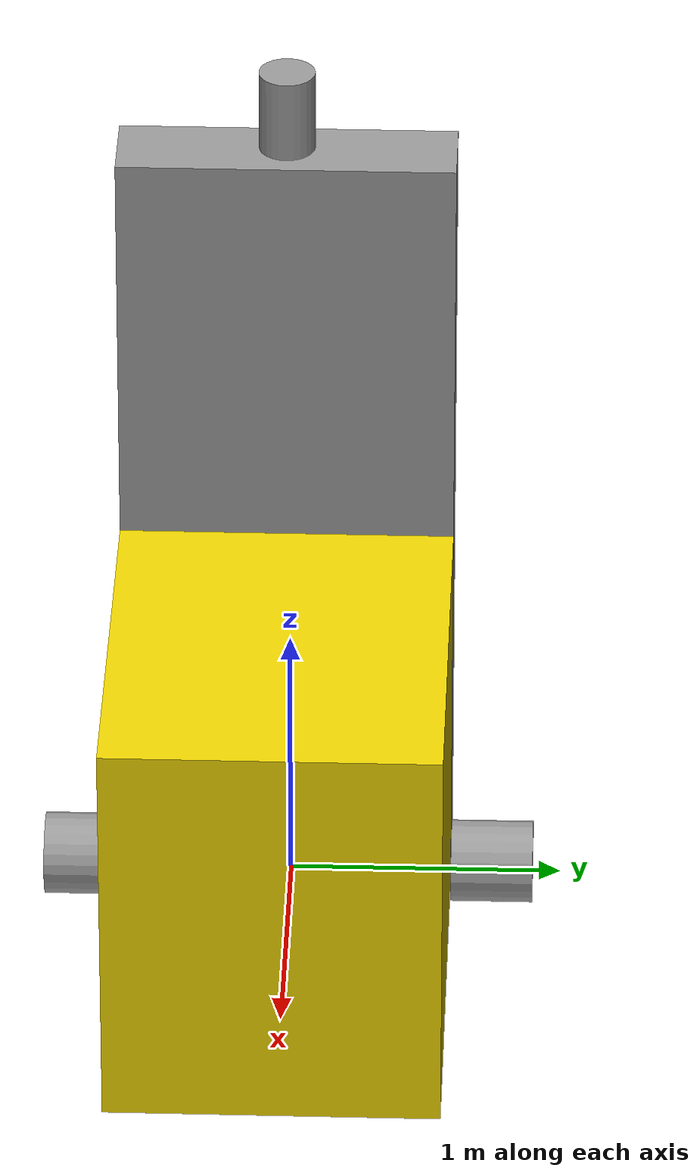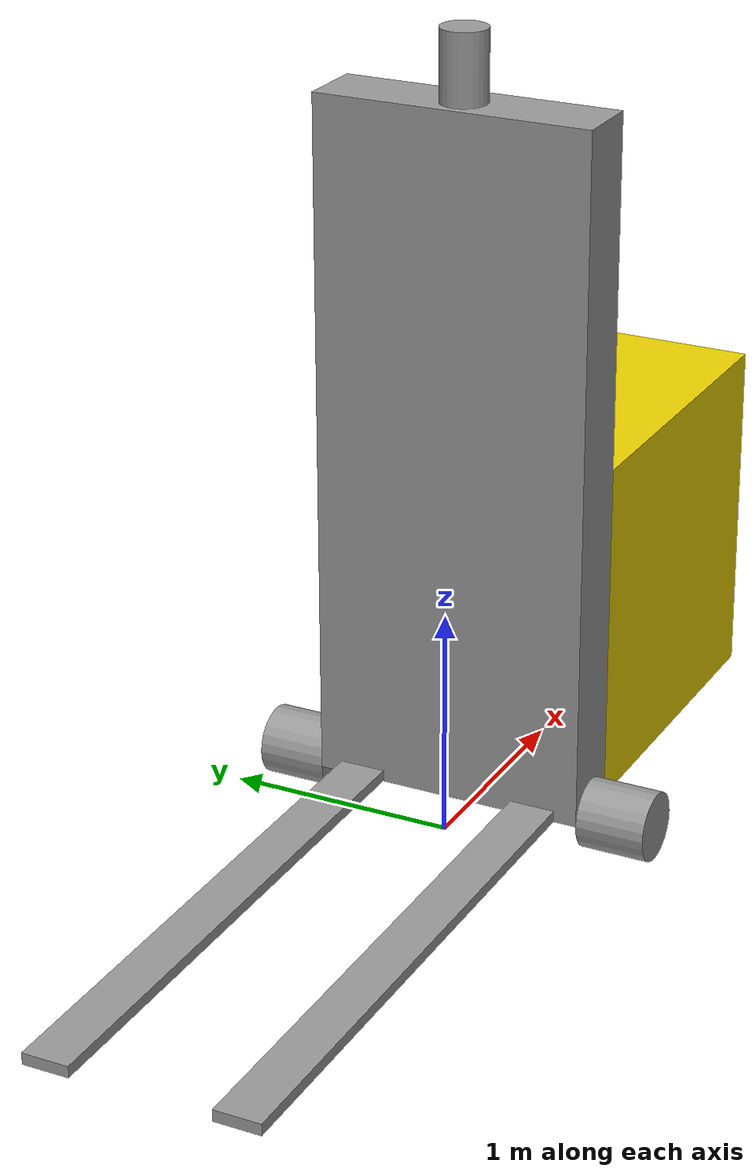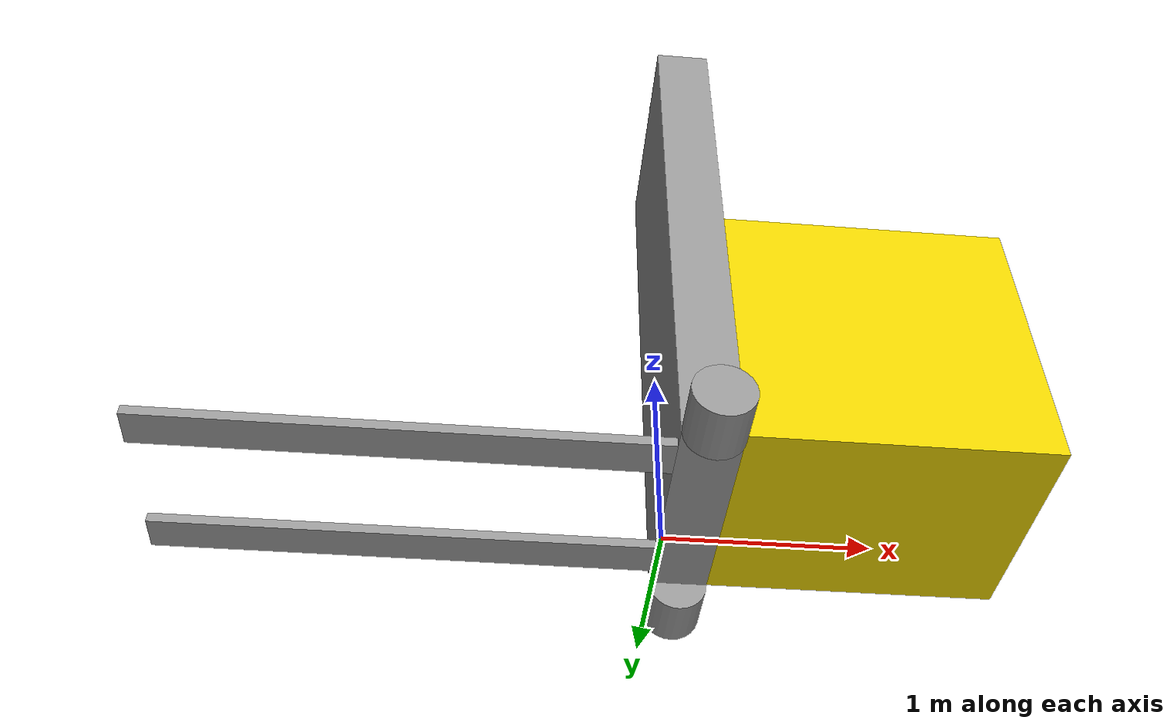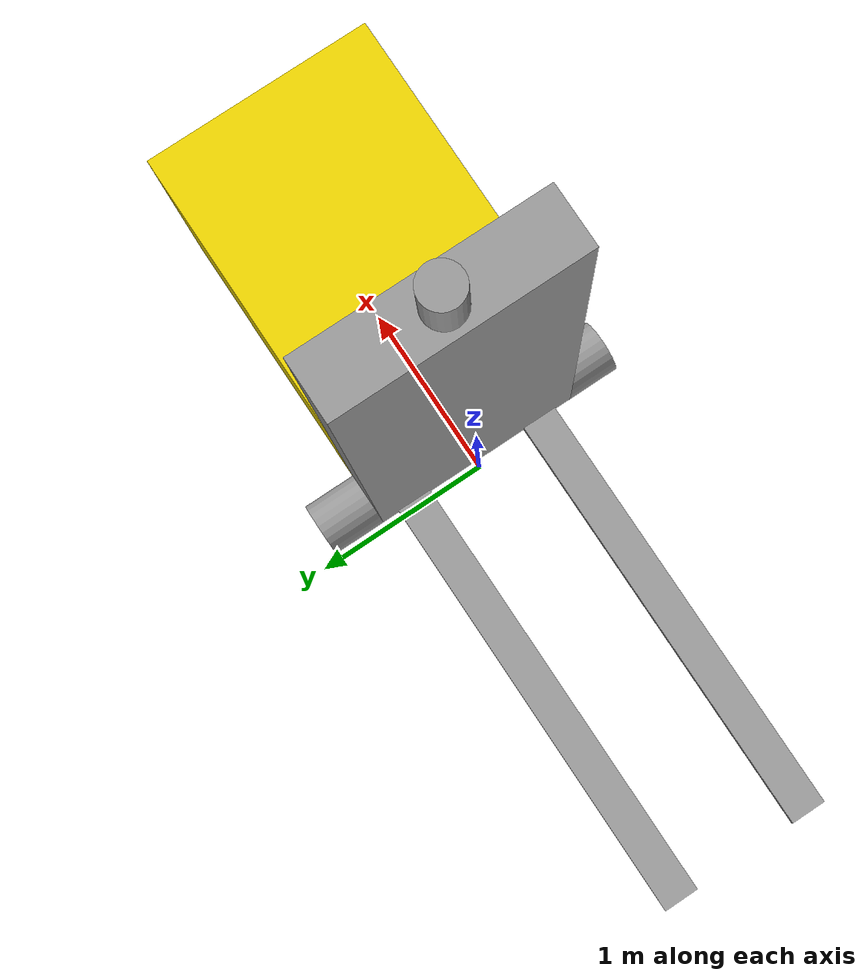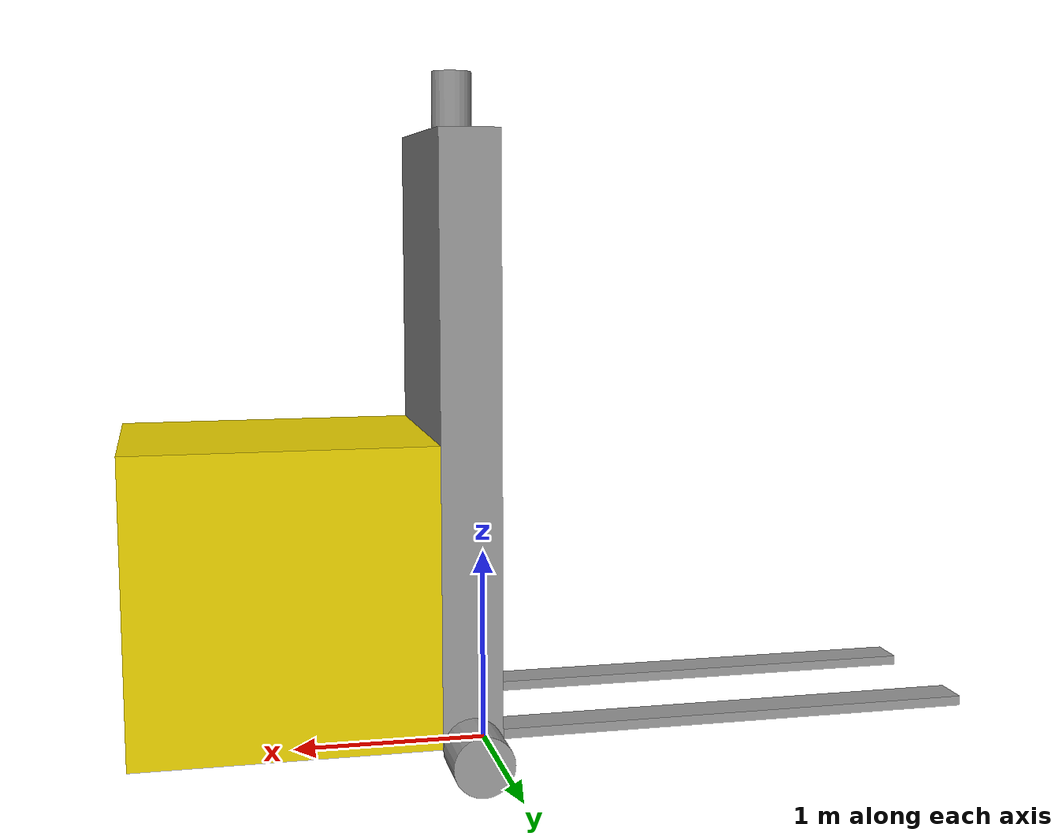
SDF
<?xml version='1.0'?>
<sdf version='1.7'>
  <model name='AGV_3Dlidar'>

    <link name='base'>
      <inertial>
        <mass>100</mass>
        <inertia>
          <ixx>60</ixx>
          <ixy>0</ixy>
          <ixz>0</ixz>
          <iyy>60</iyy>
          <iyz>0</iyz>
          <izz>60</izz>
        </inertia>
        <pose>1 0 0 0 -0 0</pose>
      </inertial>
      <pose>0.166667 0 0.15 0 -0 0</pose>
      <gravity>1</gravity>
      <self_collide>0</self_collide>
      <kinematic>0</kinematic>
      <enable_wind>0</enable_wind>
      <visual name='visual_1'>
        <pose>0.9 0 0.75 0 -0 0</pose>
        <geometry>
          <box>
            <size>1.5 1.2 1.5</size>
          </box>
        </geometry>
        <material>
          <lighting>1</lighting>
          <script>
            <uri>file://media/materials/scripts/gazebo.material</uri>
            <name>Gazebo/Grey</name>
          </script>
          <shader type='pixel'>
            <normal_map>__default__</normal_map>
          </shader>
          <ambient>0.929 0.831 0 1</ambient>
          <diffuse>0.7 0.7 0.7 1</diffuse>
          <specular>0.01 0.01 0.01 1</specular>
          <emissive>0 0 0 1</emissive>
        </material>
        <transparency>0</transparency>
        <cast_shadows>1</cast_shadows>
      </visual>
      <visual name='visual_3'>
        <pose>-1.4 -0.4 0.025 0 -0 0</pose>
        <geometry>
          <box>
            <size>2.5 0.2 0.05</size>
          </box>
        </geometry>
        <material>
          <lighting>1</lighting>
          <script>
            <uri>file://media/materials/scripts/gazebo.material</uri>
            <name>Gazebo/Grey</name>
          </script>
          <shader type='pixel'>
            <normal_map>__default__</normal_map>
          </shader>
          <ambient>0.3 0.3 0.3 1</ambient>
          <diffuse>0.7 0.7 0.7 1</diffuse>
          <specular>0.01 0.01 0.01 1</specular>
          <emissive>0 0 0 1</emissive>
        </material>
        <transparency>0</transparency>
        <cast_shadows>1</cast_shadows>
      </visual>
      <visual name='visual_2'>
        <pose>-1.4 0.4 0.025 0 -0 0</pose>
        <geometry>
          <box>
            <size>2.5 0.2 0.05</size>
          </box>
        </geometry>
        <material>
          <lighting>1</lighting>
          <script>
            <uri>file://media/materials/scripts/gazebo.material</uri>
            <name>Gazebo/Grey</name>
          </script>
          <shader type='pixel'>
            <normal_map>__default__</normal_map>
          </shader>
          <ambient>0.3 0.3 0.3 1</ambient>
          <diffuse>0.7 0.7 0.7 1</diffuse>
          <specular>0.01 0.01 0.01 1</specular>
          <emissive>0 0 0 1</emissive>
        </material>
        <transparency>0</transparency>
        <cast_shadows>1</cast_shadows>
      </visual>
      <visual name='visual'>
        <pose>0 0 1.5 0 -0 0</pose>
        <geometry>
          <box>
            <size>0.3 1.2 3</size>
          </box>
        </geometry>
        <material>
          <lighting>1</lighting>
          <script>
            <uri>file://media/materials/scripts/gazebo.material</uri>
            <name>Gazebo/Grey</name>
          </script>
          <shader type='pixel'>
            <normal_map>__default__</normal_map>
          </shader>
          <ambient>0.3 0.3 0.3 1</ambient>
          <diffuse>0.7 0.7 0.7 1</diffuse>
          <specular>0.01 0.01 0.01 1</specular>
          <emissive>0 0 0 1</emissive>
        </material>
        <transparency>0</transparency>
        <cast_shadows>1</cast_shadows>
      </visual>
      <collision name='collision'>
        <laser_retro>0</laser_retro>
        <max_contacts>10</max_contacts>
        <pose>0 0 1.5 0 -0 0</pose>
        <geometry>
          <box>
            <size>0.3 1.2 3</size>
          </box>
        </geometry>
        <surface>
          <friction>
            <ode>
              <mu>1</mu>
              <mu2>1</mu2>
              <fdir1>0 0 0</fdir1>
              <slip1>0</slip1>
              <slip2>0</slip2>
            </ode>
            <torsional>
              <coefficient>1</coefficient>
              <patch_radius>0</patch_radius>
              <surface_radius>0</surface_radius>
              <use_patch_radius>1</use_patch_radius>
              <ode>
                <slip>0</slip>
              </ode>
            </torsional>
          </friction>
          <bounce>
            <restitution_coefficient>0</restitution_coefficient>
            <threshold>1e+06</threshold>
          </bounce>
          <contact>
            <collide_without_contact>0</collide_without_contact>
            <collide_without_contact_bitmask>1</collide_without_contact_bitmask>
            <collide_bitmask>1</collide_bitmask>
            <ode>
              <soft_cfm>0</soft_cfm>
              <soft_erp>0.2</soft_erp>
              <kp>1e+13</kp>
              <kd>1</kd>
              <max_vel>0.01</max_vel>
              <min_depth>0</min_depth>
            </ode>
            <bullet>
              <split_impulse>1</split_impulse>
              <split_impulse_penetration_threshold>-0.01</split_impulse_penetration_threshold>
              <soft_cfm>0</soft_cfm>
              <soft_erp>0.2</soft_erp>
              <kp>1e+13</kp>
              <kd>1</kd>
            </bullet>
          </contact>
        </surface>
      </collision>
      <collision name='collision_1'>
        <laser_retro>0</laser_retro>
        <max_contacts>10</max_contacts>
        <pose>0.9 0 0.75 0 -0 0</pose>
        <geometry>
          <box>
            <size>1.5 1.2 1.5</size>
          </box>
        </geometry>
        <surface>
          <friction>
            <ode>
              <mu>1</mu>
              <mu2>1</mu2>
              <fdir1>0 0 0</fdir1>
              <slip1>0</slip1>
              <slip2>0</slip2>
            </ode>
            <torsional>
              <coefficient>1</coefficient>
              <patch_radius>0</patch_radius>
              <surface_radius>0</surface_radius>
              <use_patch_radius>1</use_patch_radius>
              <ode>
                <slip>0</slip>
              </ode>
            </torsional>
          </friction>
          <bounce>
            <restitution_coefficient>0</restitution_coefficient>
            <threshold>1e+06</threshold>
          </bounce>
          <contact>
            <collide_without_contact>0</collide_without_contact>
            <collide_without_contact_bitmask>1</collide_without_contact_bitmask>
            <collide_bitmask>1</collide_bitmask>
            <ode>
              <soft_cfm>0</soft_cfm>
              <soft_erp>0.2</soft_erp>
              <kp>1e+13</kp>
              <kd>1</kd>
              <max_vel>0.01</max_vel>
              <min_depth>0</min_depth>
            </ode>
            <bullet>
              <split_impulse>1</split_impulse>
              <split_impulse_penetration_threshold>-0.01</split_impulse_penetration_threshold>
              <soft_cfm>0</soft_cfm>
              <soft_erp>0.2</soft_erp>
              <kp>1e+13</kp>
              <kd>1</kd>
            </bullet>
          </contact>
        </surface>
      </collision>
      <collision name='collision_2'>
        <laser_retro>0</laser_retro>
        <max_contacts>10</max_contacts>
        <pose>-1.4 0.4 0.025 0 -0 0</pose>
        <geometry>
          <box>
            <size>2.5 0.2 0.05</size>
          </box>
        </geometry>
        <surface>
          <friction>
            <ode>
              <mu>1</mu>
              <mu2>1</mu2>
              <fdir1>0 0 0</fdir1>
              <slip1>0</slip1>
              <slip2>0</slip2>
            </ode>
            <torsional>
              <coefficient>1</coefficient>
              <patch_radius>0</patch_radius>
              <surface_radius>0</surface_radius>
              <use_patch_radius>1</use_patch_radius>
              <ode>
                <slip>0</slip>
              </ode>
            </torsional>
          </friction>
          <bounce>
            <restitution_coefficient>0</restitution_coefficient>
            <threshold>1e+06</threshold>
          </bounce>
          <contact>
            <collide_without_contact>0</collide_without_contact>
            <collide_without_contact_bitmask>1</collide_without_contact_bitmask>
            <collide_bitmask>1</collide_bitmask>
            <ode>
              <soft_cfm>0</soft_cfm>
              <soft_erp>0.2</soft_erp>
              <kp>1e+13</kp>
              <kd>1</kd>
              <max_vel>0.01</max_vel>
              <min_depth>0</min_depth>
            </ode>
            <bullet>
              <split_impulse>1</split_impulse>
              <split_impulse_penetration_threshold>-0.01</split_impulse_penetration_threshold>
              <soft_cfm>0</soft_cfm>
              <soft_erp>0.2</soft_erp>
              <kp>1e+13</kp>
              <kd>1</kd>
            </bullet>
          </contact>
        </surface>
      </collision>
      <collision name='collision_3'>
        <laser_retro>0</laser_retro>
        <max_contacts>10</max_contacts>
        <pose>-1.4 -0.4 0.025 0 -0 0</pose>
        <geometry>
          <box>
            <size>2.5 0.2 0.05</size>
          </box>
        </geometry>
        <surface>
          <friction>
            <ode>
              <mu>1</mu>
              <mu2>1</mu2>
              <fdir1>0 0 0</fdir1>
              <slip1>0</slip1>
              <slip2>0</slip2>
            </ode>
            <torsional>
              <coefficient>1</coefficient>
              <patch_radius>0</patch_radius>
              <surface_radius>0</surface_radius>
              <use_patch_radius>1</use_patch_radius>
              <ode>
                <slip>0</slip>
              </ode>
            </torsional>
          </friction>
          <bounce>
            <restitution_coefficient>0</restitution_coefficient>
            <threshold>1e+06</threshold>
          </bounce>
          <contact>
            <collide_without_contact>0</collide_without_contact>
            <collide_without_contact_bitmask>1</collide_without_contact_bitmask>
            <collide_bitmask>1</collide_bitmask>
            <ode>
              <soft_cfm>0</soft_cfm>
              <soft_erp>0.2</soft_erp>
              <kp>1e+13</kp>
              <kd>1</kd>
              <max_vel>0.01</max_vel>
              <min_depth>0</min_depth>
            </ode>
            <bullet>
              <split_impulse>1</split_impulse>
              <split_impulse_penetration_threshold>-0.01</split_impulse_penetration_threshold>
              <soft_cfm>0</soft_cfm>
              <soft_erp>0.2</soft_erp>
              <kp>1e+13</kp>
              <kd>1</kd>
            </bullet>
          </contact>
        </surface>
      </collision>
    </link>
    <link name='wheelL'>
      <inertial>
        <mass>1</mass>
        <inertia>
          <ixx>0.0145833</ixx>
          <ixy>0</ixy>
          <ixz>0</ixz>
          <iyy>0.0145833</iyy>
          <iyz>0</iyz>
          <izz>0.0125</izz>
        </inertia>
        <pose>0 0 0 0 -0 0</pose>
      </inertial>
      <pose>0.166667 0.750014 0.15 1.5707 -0 0</pose>
      <gravity>1</gravity>
      <self_collide>0</self_collide>
      <kinematic>0</kinematic>
      <enable_wind>0</enable_wind>
      <visual name='visual'>
        <pose>0 0 0 0 -0 0</pose>
        <geometry>
          <cylinder>
            <radius>0.15</radius>
            <length>0.3</length>
          </cylinder>
        </geometry>
        <material>
          <lighting>1</lighting>
          <script>
            <uri>file://media/materials/scripts/gazebo.material</uri>
            <name>Gazebo/Grey</name>
          </script>
          <shader type='pixel'>
            <normal_map>__default__</normal_map>
          </shader>
          <ambient>0.3 0.3 0.3 1</ambient>
          <diffuse>0.7 0.7 0.7 1</diffuse>
          <specular>0.01 0.01 0.01 1</specular>
          <emissive>0 0 0 1</emissive>
        </material>
        <transparency>0</transparency>
        <cast_shadows>1</cast_shadows>
      </visual>
      <collision name='collision'>
        <laser_retro>0</laser_retro>
        <max_contacts>10</max_contacts>
        <pose>0 0 0 0 -0 0</pose>
        <geometry>
          <cylinder>
            <radius>0.15</radius>
            <length>0.3</length>
          </cylinder>
        </geometry>
        <surface>
          <friction>
            <ode>
              <mu>1</mu>
              <mu2>1</mu2>
              <fdir1>0 0 0</fdir1>
              <slip1>0</slip1>
              <slip2>0</slip2>
            </ode>
            <torsional>
              <coefficient>1</coefficient>
              <patch_radius>0</patch_radius>
              <surface_radius>0</surface_radius>
              <use_patch_radius>1</use_patch_radius>
              <ode>
                <slip>0</slip>
              </ode>
            </torsional>
          </friction>
          <bounce>
            <restitution_coefficient>0</restitution_coefficient>
            <threshold>1e+06</threshold>
          </bounce>
          <contact>
            <collide_without_contact>0</collide_without_contact>
            <collide_without_contact_bitmask>1</collide_without_contact_bitmask>
            <collide_bitmask>1</collide_bitmask>
            <ode>
              <soft_cfm>0</soft_cfm>
              <soft_erp>0.2</soft_erp>
              <kp>1e+13</kp>
              <kd>1</kd>
              <max_vel>0.01</max_vel>
              <min_depth>0</min_depth>
            </ode>
            <bullet>
              <split_impulse>1</split_impulse>
              <split_impulse_penetration_threshold>-0.01</split_impulse_penetration_threshold>
              <soft_cfm>0</soft_cfm>
              <soft_erp>0.2</soft_erp>
              <kp>1e+13</kp>
              <kd>1</kd>
            </bullet>
          </contact>
        </surface>
      </collision>
    </link>
    <link name='wheelR'>
      <inertial>
        <mass>1</mass>
        <inertia>
          <ixx>0.0145833</ixx>
          <ixy>0</ixy>
          <ixz>0</ixz>
          <iyy>0.0145833</iyy>
          <iyz>0</iyz>
          <izz>0.0125</izz>
        </inertia>
        <pose>0 0 0 0 -0 0</pose>
      </inertial>
      <pose>0.166667 -0.750014 0.15 1.5707 -0 0</pose>
      <gravity>1</gravity>
      <self_collide>0</self_collide>
      <kinematic>0</kinematic>
      <enable_wind>0</enable_wind>
      <visual name='visual'>
        <pose>0 0 0 0 -0 0</pose>
        <geometry>
          <cylinder>
            <radius>0.15</radius>
            <length>0.3</length>
          </cylinder>
        </geometry>
        <material>
          <lighting>1</lighting>
          <script>
            <uri>file://media/materials/scripts/gazebo.material</uri>
            <name>Gazebo/Grey</name>
          </script>
          <shader type='pixel'>
            <normal_map>__default__</normal_map>
          </shader>
          <ambient>0.3 0.3 0.3 1</ambient>
          <diffuse>0.7 0.7 0.7 1</diffuse>
          <specular>0.01 0.01 0.01 1</specular>
          <emissive>0 0 0 1</emissive>
        </material>
        <transparency>0</transparency>
        <cast_shadows>1</cast_shadows>
      </visual>
      <collision name='collision'>
        <laser_retro>0</laser_retro>
        <max_contacts>10</max_contacts>
        <pose>0 0 0 0 -0 0</pose>
        <geometry>
          <cylinder>
            <radius>0.15</radius>
            <length>0.3</length>
          </cylinder>
        </geometry>
        <surface>
          <friction>
            <ode>
              <mu>1</mu>
              <mu2>1</mu2>
              <fdir1>0 0 0</fdir1>
              <slip1>0</slip1>
              <slip2>0</slip2>
            </ode>
            <torsional>
              <coefficient>1</coefficient>
              <patch_radius>0</patch_radius>
              <surface_radius>0</surface_radius>
              <use_patch_radius>1</use_patch_radius>
              <ode>
                <slip>0</slip>
              </ode>
            </torsional>
          </friction>
          <bounce>
            <restitution_coefficient>0</restitution_coefficient>
            <threshold>1e+06</threshold>
          </bounce>
          <contact>
            <collide_without_contact>0</collide_without_contact>
            <collide_without_contact_bitmask>1</collide_without_contact_bitmask>
            <collide_bitmask>1</collide_bitmask>
            <ode>
              <soft_cfm>0</soft_cfm>
              <soft_erp>0.2</soft_erp>
              <kp>1e+13</kp>
              <kd>1</kd>
              <max_vel>0.01</max_vel>
              <min_depth>0</min_depth>
            </ode>
            <bullet>
              <split_impulse>1</split_impulse>
              <split_impulse_penetration_threshold>-0.01</split_impulse_penetration_threshold>
              <soft_cfm>0</soft_cfm>
              <soft_erp>0.2</soft_erp>
              <kp>1e+13</kp>
              <kd>1</kd>
            </bullet>
          </contact>
        </surface>
      </collision>
    </link>
    <link name='lidar3D'>
      <inertial>
        <mass>1</mass>
        <inertia>
          <ixx>0.145833</ixx>
          <ixy>0</ixy>
          <ixz>0</ixz>
          <iyy>0.145833</iyy>
          <iyz>0</iyz>
          <izz>0.125</izz>
        </inertia>
        <pose>0 0 0 0 -0 0</pose>
      </inertial>
      <pose>0.15 0 3.3 0 -0 0</pose>
      <gravity>1</gravity>
      <self_collide>0</self_collide>
      <kinematic>0</kinematic>
      <enable_wind>0</enable_wind>
      <visual name='visual'>
        <pose>0 0 0 0 -0 0</pose>
        <geometry>
          <cylinder>
            <radius>0.1</radius>
            <length>0.3</length>
          </cylinder>
        </geometry>
        <material>
          <lighting>1</lighting>
          <script>
            <uri>file://media/materials/scripts/gazebo.material</uri>
            <name>Gazebo/Grey</name>
          </script>
          <shader type='pixel'>
            <normal_map>__default__</normal_map>
          </shader>
          <ambient>0.3 0.3 0.3 1</ambient>
          <diffuse>0.7 0.7 0.7 1</diffuse>
          <specular>0.01 0.01 0.01 1</specular>
          <emissive>0 0 0 1</emissive>
        </material>
        <transparency>0</transparency>
        <cast_shadows>1</cast_shadows>
      </visual>
      <collision name='collision'>
        <laser_retro>0</laser_retro>
        <max_contacts>10</max_contacts>
        <pose>0 0 0 0 -0 0</pose>
        <geometry>
          <cylinder>
            <radius>0.1</radius>
            <length>0.3</length>
          </cylinder>
        </geometry>
        <surface>
          <friction>
            <ode>
              <mu>1</mu>
              <mu2>1</mu2>
              <fdir1>0 0 0</fdir1>
              <slip1>0</slip1>
              <slip2>0</slip2>
            </ode>
            <torsional>
              <coefficient>1</coefficient>
              <patch_radius>0</patch_radius>
              <surface_radius>0</surface_radius>
              <use_patch_radius>1</use_patch_radius>
              <ode>
                <slip>0</slip>
              </ode>
            </torsional>
          </friction>
          <bounce>
            <restitution_coefficient>0</restitution_coefficient>
            <threshold>1e+06</threshold>
          </bounce>
          <contact>
            <collide_without_contact>0</collide_without_contact>
            <collide_without_contact_bitmask>1</collide_without_contact_bitmask>
            <collide_bitmask>1</collide_bitmask>
            <ode>
              <soft_cfm>0</soft_cfm>
              <soft_erp>0.2</soft_erp>
              <kp>1e+13</kp>
              <kd>1</kd>
              <max_vel>0.01</max_vel>
              <min_depth>0</min_depth>
            </ode>
            <bullet>
              <split_impulse>1</split_impulse>
              <split_impulse_penetration_threshold>-0.01</split_impulse_penetration_threshold>
              <soft_cfm>0</soft_cfm>
              <soft_erp>0.2</soft_erp>
              <kp>1e+13</kp>
              <kd>1</kd>
            </bullet>
          </contact>
        </surface>
      </collision>

      <sensor type="ray" name="sensor">
        <pose>0 0 0 0 0 0</pose>
        <visualize>true</visualize>
        <update_rate>10</update_rate>
        <ray>
          <noise>
            <type>gaussian</type>
            <mean>0.0</mean>
            <stddev>.1</stddev>
          </noise>
          <scan>
            <horizontal>
              <samples>60</samples>
              <resolution>1</resolution>
              <min_angle>-1</min_angle>
              <max_angle>1</max_angle>
            </horizontal>
            <vertical>
              <samples>8</samples>
              <resolution>1</resolution>
              <min_angle>-.5</min_angle>
              <max_angle>.5</max_angle>
            </vertical>
          </scan>
          <range>
            <min>1</min>
            <max>30</max>
            <resolution>0.02</resolution>
          </range>
        </ray>
        <plugin name="agv_3Dlidar" filename="libgazebo_ros_velodyne_laser.so">
          <topicName>/agv_3Dlidar/pointcloud2</topicName>
          <frameName>map</frameName>
        </plugin>
      </sensor>
    </link>

    <joint name='base_wheelL_JOINT' type='revolute'>
      <parent>base</parent>
      <child>wheelL</child>
      <pose>0 0 0 0 -0 0</pose>
      <axis>
        <xyz>0 0 1</xyz>
        <limit>
          <lower>-1.79769e+308</lower>
          <upper>1.79769e+308</upper>
          <effort>-1</effort>
          <velocity>-1</velocity>
        </limit>
        <dynamics>
          <spring_reference>0</spring_reference>
          <spring_stiffness>0</spring_stiffness>
          <damping>0</damping>
          <friction>0</friction>
        </dynamics>
      </axis>
      <physics>
        <ode>
          <limit>
            <cfm>0</cfm>
            <erp>0.2</erp>
          </limit>
          <suspension>
            <cfm>0</cfm>
            <erp>0.2</erp>
          </suspension>
        </ode>
      </physics>
    </joint>
    <joint name='base_wheelR_JOINT' type='revolute'>
      <parent>base</parent>
      <child>wheelR</child>
      <pose>0 0 0 0 -0 0</pose>
      <axis>
        <xyz>0 0 1</xyz>
        <limit>
          <lower>-1.79769e+308</lower>
          <upper>1.79769e+308</upper>
          <effort>-1</effort>
          <velocity>-1</velocity>
        </limit>
        <dynamics>
          <spring_reference>0</spring_reference>
          <spring_stiffness>0</spring_stiffness>
          <damping>0</damping>
          <friction>0</friction>
        </dynamics>
      </axis>
      <physics>
        <ode>
          <limit>
            <cfm>0</cfm>
            <erp>0.2</erp>
          </limit>
          <suspension>
            <cfm>0</cfm>
            <erp>0.2</erp>
          </suspension>
        </ode>
      </physics>
    </joint>
    <joint name='lidar3D_base_JOINT' type='fixed'>
      <parent>base</parent>
      <child>lidar3D</child>
      <pose>0 0 0 0 -0 0</pose>
      <physics>
        <ode>
          <limit>
            <cfm>0</cfm>
            <erp>0.2</erp>
          </limit>
          <suspension>
            <cfm>0</cfm>
            <erp>0.2</erp>
          </suspension>
        </ode>
      </physics>
    </joint>

    <static>0</static>
    <allow_auto_disable>1</allow_auto_disable>

    <!-- Attach the plugin to this model -->
    <plugin name="test_plugin" filename="liblidar3D_plugin.so"/>

  </model>
</sdf>
